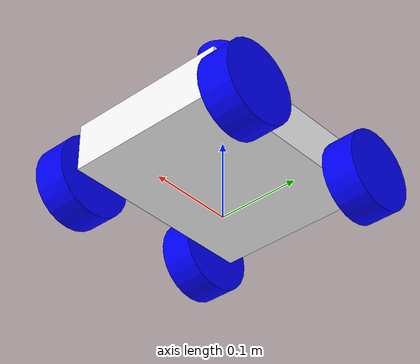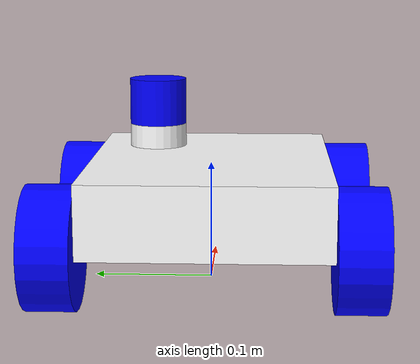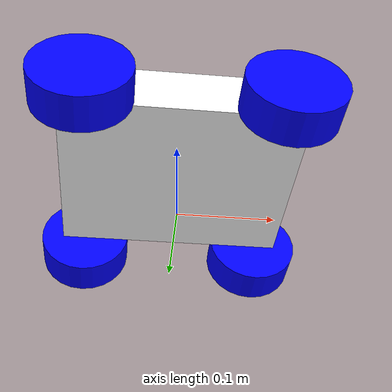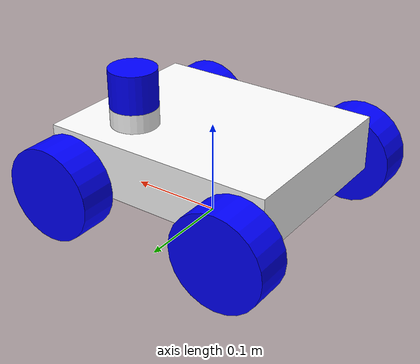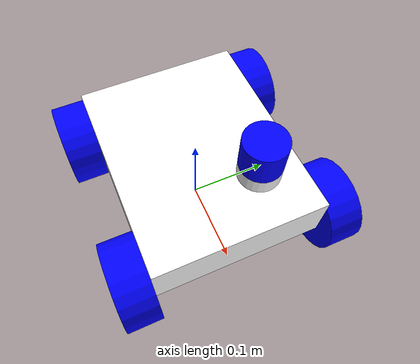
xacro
<?xml version="1.0"?>
<robot xmlns:xacro="http://www.ros.org/wiki/xacro"  name="robot">

    <xacro:include filename="rover_core.xacro"/>
    <xacro:include filename="ros2_control.xacro"/>
    <xacro:include filename="lidar_scan.xacro"/>

</robot>

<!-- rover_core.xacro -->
<robot xmlns:xacro="http://www.ros.org/wiki/xacro" >
    <xacro:include filename="inertial_macros.xacro"/>

    <material name="white">
        <color rgba ="1 1 1 1"/>
    </material>

    <material name="blue">
        <color rgba ="0 0 1 1"/>
    </material>

    <link name="base_link">
    </link>

    <joint name="chassis_joint" type="fixed">
        <parent link="base_link"/>
        <child link="chassis"/>
        <origin xyz="0 0 0.075"/>
    </joint>

    <link name="chassis">
        <visual>
            <geometry>
                <box size="0.25 0.20 0.06"/>
            </geometry>
            <material name="white"/>
            <origin xyz="0 0 0"/>
        </visual>
        <visual>
            <geometry>
                <cylinder radius="0.025" length="0.02"/>
            </geometry>
            <material name="white"/>
            <origin xyz="0.06 0.05 0.04"/>
        </visual>
        <collision>
            <geometry>
                <box size="0.25 0.20 0.06"/>
            </geometry>

            <origin xyz="0 0 0"/>
        </collision>
        <collision>
            <geometry>
                <cylinder radius="0.025" length="0.02"/>
            </geometry>
            <origin xyz="0.06 0.05 0.04"/>
        </collision>
        <xacro:inertial_box mass="0.5" x="0" y="0" z="0">
            <origin xyz = "0 0 0" rpy="0 0 0"/>
        </xacro:inertial_box>
    </link>
    <!--0.0508 was the z value before for visual & collision (for ref)-->
    <gazebo reference="chassis">
        <material> Gazebo/White</material>
    </gazebo>

    <!-- wheel links-->
    <!-- LF-->
    <joint name="LF_wheel_joint" type="continuous">
        <parent link="chassis"/>
        <child link="LF_wheel"/>
        <origin xyz="0.1 0.12 -0.025" rpy="-${pi/2} 0 0"/>
        <axis xyz="0 0 1"/>
    </joint>

    <link name="LF_wheel">
        <visual>
            <geometry>
                <cylinder radius="0.05" length="0.04"/>
            </geometry>
            <material name="blue"/>
        </visual>
        <collision>
            <geometry>
                <sphere radius="0.05"/>
            </geometry>
        </collision>
        <xacro:inertial_cylinder mass="0.1" length="0.04" radius="0.05">
            <origin xyz = "0 0 0" rpy="0 0 0"/>
        </xacro:inertial_cylinder>

    </link>
    <gazebo reference="LF_wheel">
        <material> Gazebo/Blue</material>
    </gazebo>
    <!-- LB-->
    <joint name="LB_wheel_joint" type="continuous">
        <parent link="chassis"/>
        <child link="LB_wheel"/>
        <origin xyz="-0.1 0.12 -0.025" rpy="-${pi/2} 0 0"/>
        <axis xyz="0 0 1"/>
    </joint>

    <link name="LB_wheel">
        <visual>
            <geometry>
                <cylinder radius="0.05" length="0.04"/>
            </geometry>
            <material name="blue"/>
        </visual>
        <collision>
            <geometry>
                <sphere radius="0.05"/>
            </geometry>
        </collision>
        <xacro:inertial_cylinder mass="0.1" length="0.04" radius="0.05">
            <origin xyz = "0 0 0" rpy="0 0 0"/>
        </xacro:inertial_cylinder>
    </link>
    <gazebo reference="LB_wheel">
        <material> Gazebo/Blue</material>
    </gazebo>

    <!-- RF-->
    <joint name="RF_wheel_joint" type="continuous">
        <parent link="chassis"/>
        <child link="RF_wheel"/>
        <origin xyz="0.1 -0.12 -0.025" rpy="${pi/2} 0 0"/>
        <axis xyz="0 0 -1"/>
    </joint>

    <link name="RF_wheel">
        <visual>
            <geometry>
                <cylinder radius="0.05" length="0.04"/>
            </geometry>
            <material name="blue"/>
        </visual>
        <collision>
            <geometry>
                <sphere radius="0.05"/>
            </geometry>
        </collision>
        <xacro:inertial_cylinder mass="0.1" length="0.04" radius="0.05">
            <origin xyz = "0 0 0" rpy="0 0 0"/>
        </xacro:inertial_cylinder>
    </link>
    <gazebo reference="RF_wheel">
        <material> Gazebo/Blue</material>
    </gazebo>

    <!-- RB-->
    <joint name="RB_wheel_joint" type="continuous">
        <parent link="chassis"/>
        <child link="RB_wheel"/>
        <origin xyz="-0.1 -0.12 -0.025" rpy="${pi/2} 0 0"/>
        <axis xyz="0 0 -1"/>
    </joint>

    <link name="RB_wheel">
        <visual>
            <geometry>
                <cylinder radius="0.05" length="0.04"/>
            </geometry>
            <material name="blue"/>
        </visual>
        <collision>
            <geometry>
                <sphere radius="0.05"/>
            </geometry>
        </collision>
        <xacro:inertial_cylinder mass="0.1" length="0.04" radius="0.05">
            <origin xyz = "0 0 0" rpy="0 0 0"/>
        </xacro:inertial_cylinder>
    </link>
    <gazebo reference="RB_wheel">
        <material> Gazebo/Blue</material>
    </gazebo>

</robot>

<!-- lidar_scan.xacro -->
<robot xmlns:xacro="http://www.ros.org/wiki/xacro">

    <joint name="lidar_joint" type="fixed">
        <parent link="chassis"/>
        <child link="laser_frame"/>
        <origin xyz="0.06 0.05 0.07" rpy= "0 0 0" />
    </joint>
    <link name="laser_frame">
        <visual>
            <geometry>
                <cylinder radius="0.025" length="0.04"/>
            </geometry>
            <material name="blue"/>
        </visual>
        <collision>
            <geometry>
                <cylinder radius="0.025" length="0.04" />
            </geometry>
        </collision>

    </link>

    <gazebo reference="laser_frame">
        <material> Gazebo/Blue</material>
        <sensor name="laser" type="ray">
            <pose> 0 0 0 0 0 0</pose>
            <visualize>true</visualize>
            <update_rate>10</update_rate>
            <ray>
                <scan>
                    <horizontal>
                        <samples>360</samples>
                        <resolution>1</resolution>
                        <min_angle>-3.14</min_angle>
                        <max_angle>3.14</max_angle>
                    </horizontal>
                </scan>
                <range>
                    <min>0.3</min>
                    <max>12</max>
                    <resolution>0.01</resolution>
                </range>
            </ray>
            <plugin name="laser_controller" filename="libgazebo_ros_ray_sensor.so">
                <ros>
                    <argument>~/out:=scan</argument>
                </ros>
                <output_type>sensor_msgs/LaserScan</output_type>
                <frame_name>laser_frame</frame_name>
            </plugin>
        </sensor>
    </gazebo>
</robot>
